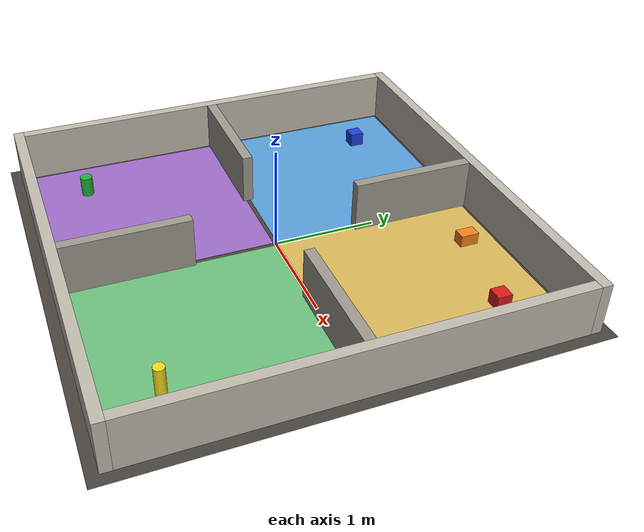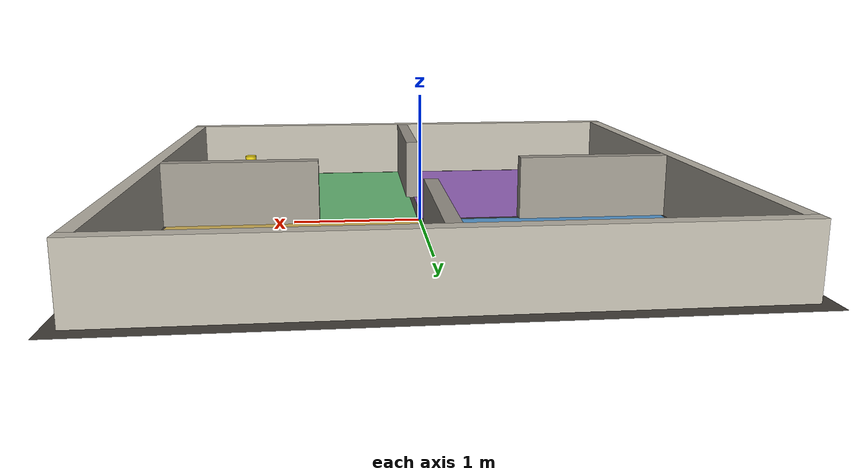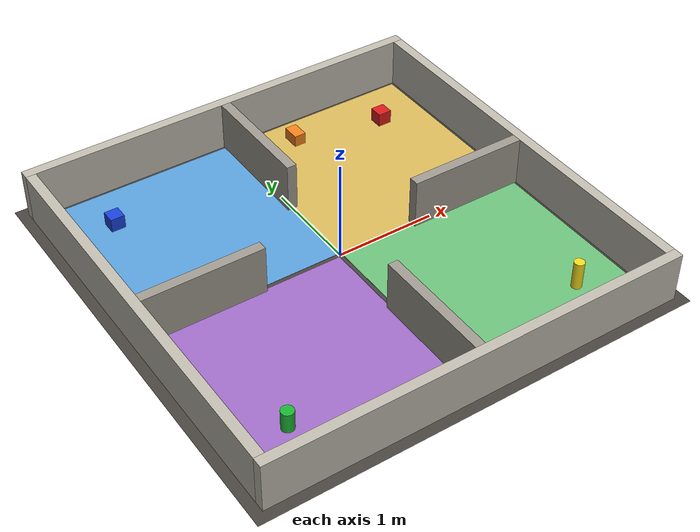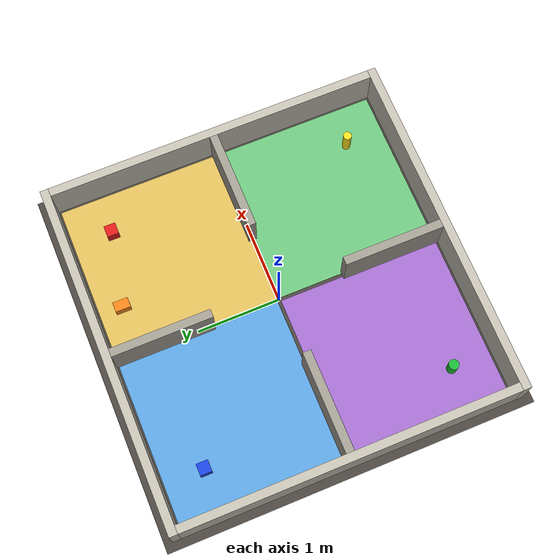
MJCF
<mujoco model="microduck_four_rooms">
  <visual>
    <headlight diffuse="0.6 0.6 0.6" ambient="0.3 0.3 0.3" specular="0 0 0"/>
    <global azimuth="150" elevation="-25" offwidth="1280" offheight="720"/>
  </visual>

  <asset>
    <texture type="skybox" builtin="gradient" rgb1="0.4 0.55 0.7" rgb2="0.05 0.05 0.1"
             width="512" height="3072"/>
    <texture type="2d" name="floortex" builtin="checker" mark="edge" rgb1="0.32 0.3 0.28"
             rgb2="0.24 0.22 0.2" markrgb="0.5 0.5 0.5" width="300" height="300"/>
    <material name="floormat" texture="floortex" texuniform="true" texrepeat="8 8"
              reflectance="0.15"/>
    <material name="wallmat" rgba="0.75 0.73 0.68 1"/>
    <material name="stubmat" rgba="0.62 0.6 0.56 1"/>
    <material name="kitchenmat" rgba="0.85 0.72 0.35 1"/>
    <material name="livingmat" rgba="0.35 0.62 0.85 1"/>
    <material name="bedroommat" rgba="0.62 0.42 0.78 1"/>
    <material name="officemat" rgba="0.42 0.75 0.48 1"/>
  </asset>

  <worldbody>
    <light name="sun_a" pos="1.5 1.5 3.0" dir="-0.35 -0.35 -1" directional="true"
           diffuse="0.55 0.55 0.55" specular="0.1 0.1 0.1"/>
    <light name="sun_b" pos="-1.5 -1.5 3.0" dir="0.35 0.35 -1" directional="true"
           diffuse="0.45 0.45 0.45" specular="0.05 0.05 0.05"/>

    <geom name="floor" type="plane" size="2.2 2.2 0.05" material="floormat" group="0"/>

    <!-- Coloured floor patches (visual only) so the rooms are recognisable
         from the chase camera. -->
    <geom name="floor_kitchen" type="box" size="0.98 0.98 0.001" pos="1 1 0.001"
          material="kitchenmat" contype="0" conaffinity="0" group="0"/>
    <geom name="floor_living" type="box" size="0.98 0.98 0.001" pos="-1 1 0.001"
          material="livingmat" contype="0" conaffinity="0" group="0"/>
    <geom name="floor_bedroom" type="box" size="0.98 0.98 0.001" pos="-1 -1 0.001"
          material="bedroommat" contype="0" conaffinity="0" group="0"/>
    <geom name="floor_office" type="box" size="0.98 0.98 0.001" pos="1 -1 0.001"
          material="officemat" contype="0" conaffinity="0" group="0"/>

    <!-- Outer walls: 0.5 m tall, 0.1 m thick, inner faces at +/-2.0 m. -->
    <geom name="wall_north" type="box" size="2.1 0.05 0.25" pos="0 2.05 0.25"
          material="wallmat" group="0"/>
    <geom name="wall_south" type="box" size="2.1 0.05 0.25" pos="0 -2.05 0.25"
          material="wallmat" group="0"/>
    <geom name="wall_east" type="box" size="0.05 2.0 0.25" pos="2.05 0 0.25"
          material="wallmat" group="0"/>
    <geom name="wall_west" type="box" size="0.05 2.0 0.25" pos="-2.05 0 0.25"
          material="wallmat" group="0"/>

    <!-- Inner stubs: split the arena into quadrants, leaving a 1.6 m gap
         between stub tips (the open central hub). -->
    <geom name="stub_east" type="box" size="0.6 0.05 0.25" pos="1.4 0 0.25"
          material="stubmat" group="0"/>
    <geom name="stub_west" type="box" size="0.6 0.05 0.25" pos="-1.4 0 0.25"
          material="stubmat" group="0"/>
    <geom name="stub_north" type="box" size="0.05 0.6 0.25" pos="0 1.4 0.25"
          material="stubmat" group="0"/>
    <geom name="stub_south" type="box" size="0.05 0.6 0.25" pos="0 -1.4 0.25"
          material="stubmat" group="0"/>

    <!-- Landmark objects, one per room plus one near the kitchen's back
         wall. Sized 6-14 cm so the lidar maps them. -->
    <geom name="red_box" type="box" size="0.07 0.07 0.07" pos="1.5 1.5 0.07"
          rgba="0.85 0.1 0.1 1" group="0"/>
    <geom name="blue_box" type="box" size="0.07 0.07 0.07" pos="-1.5 1.5 0.07"
          rgba="0.1 0.25 0.85 1" group="0"/>
    <geom name="green_cylinder" type="cylinder" size="0.06 0.1" pos="-1.5 -1.5 0.1"
          rgba="0.1 0.7 0.2 1" group="0"/>
    <geom name="yellow_pillar" type="cylinder" size="0.05 0.14" pos="1.5 -1.5 0.14"
          rgba="0.95 0.85 0.1 1" group="0"/>
    <geom name="orange_crate" type="box" size="0.06 0.09 0.06" pos="0.6 1.7 0.06"
          rgba="0.95 0.5 0.1 1" group="0"/>
  </worldbody>
</mujoco>
